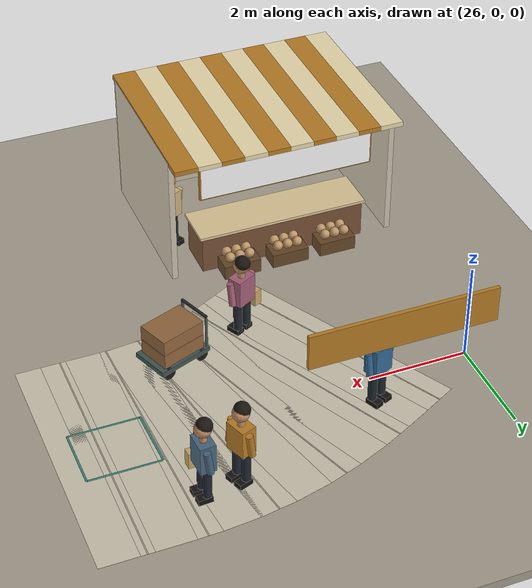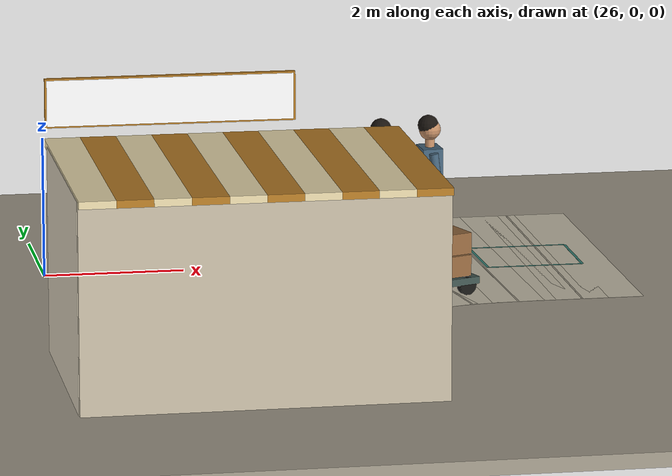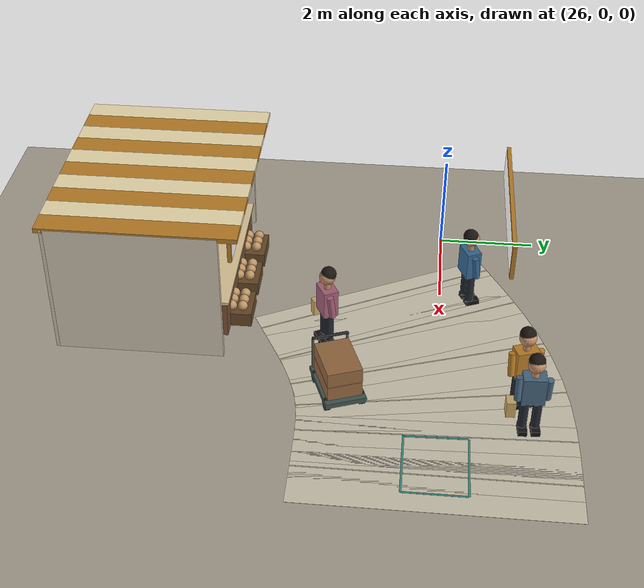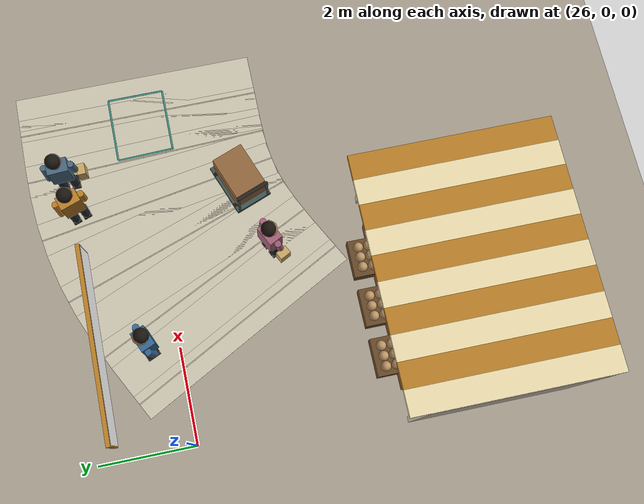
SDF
<sdf version="1.10">
 <world name="swan_market">
  <model name="ground">
   <static>true</static>
   <pose>15 0 -0.1 0 0 0</pose>
   <link name="body">
    <collision name="box_collision"><geometry><box><size>46 24 0.2</size></box></geometry></collision>
    <visual name="box_visual">
     <geometry><box><size>46 24 0.2</size></box></geometry>
     <material><ambient>0.64 0.61 0.55 1</ambient><diffuse>0.64 0.61 0.55 1</diffuse></material>
    </visual>
   </link>
  </model>
  <model name="market_paving_60">
   <static>true</static>
   <pose>28.25 -1.2978 0.002 0 0 0.48699</pose>
   <link name="body">
    <visual name="box_visual">
     <geometry><box><size>0.75 5.2 0.004</size></box></geometry>
     <material><ambient>0.79 0.76 0.68 1</ambient><diffuse>0.79 0.76 0.68 1</diffuse></material>
    </visual>
   </link>
  </model>
  <model name="paving_joint_60">
   <static>true</static>
   <pose>28.25 -1.2978 0.0045 0 0 0.48699</pose>
   <link name="body">
    <visual name="box_visual">
     <geometry><box><size>0.025 5.2 0.001</size></box></geometry>
     <material><ambient>0.67 0.64 0.57 1</ambient><diffuse>0.67 0.64 0.57 1</diffuse></material>
    </visual>
   </link>
  </model>
  <model name="market_paving_61">
   <static>true</static>
   <pose>28.75 -1.0326 0.002 0 0 0.48375</pose>
   <link name="body">
    <visual name="box_visual">
     <geometry><box><size>0.75 5.2 0.004</size></box></geometry>
     <material><ambient>0.79 0.76 0.68 1</ambient><diffuse>0.79 0.76 0.68 1</diffuse></material>
    </visual>
   </link>
  </model>
  <model name="market_paving_62">
   <static>true</static>
   <pose>29.25 -0.77782 0.002 0 0 0.45458</pose>
   <link name="body">
    <visual name="box_visual">
     <geometry><box><size>0.75 5.2 0.004</size></box></geometry>
     <material><ambient>0.79 0.76 0.68 1</ambient><diffuse>0.79 0.76 0.68 1</diffuse></material>
    </visual>
   </link>
  </model>
  <model name="paving_joint_62">
   <static>true</static>
   <pose>29.25 -0.77782 0.0045 0 0 0.45458</pose>
   <link name="body">
    <visual name="box_visual">
     <geometry><box><size>0.025 5.2 0.001</size></box></geometry>
     <material><ambient>0.67 0.64 0.57 1</ambient><diffuse>0.67 0.64 0.57 1</diffuse></material>
    </visual>
   </link>
  </model>
  <model name="market_paving_63">
   <static>true</static>
   <pose>29.75 -0.54833 0.002 0 0 0.40225</pose>
   <link name="body">
    <visual name="box_visual">
     <geometry><box><size>0.75 5.2 0.004</size></box></geometry>
     <material><ambient>0.79 0.76 0.68 1</ambient><diffuse>0.79 0.76 0.68 1</diffuse></material>
    </visual>
   </link>
  </model>
  <model name="market_paving_64">
   <static>true</static>
   <pose>30.25 -0.35543 0.002 0 0 0.33122</pose>
   <link name="body">
    <visual name="box_visual">
     <geometry><box><size>0.75 5.2 0.004</size></box></geometry>
     <material><ambient>0.79 0.76 0.68 1</ambient><diffuse>0.79 0.76 0.68 1</diffuse></material>
    </visual>
   </link>
  </model>
  <model name="paving_joint_64">
   <static>true</static>
   <pose>30.25 -0.35543 0.0045 0 0 0.33122</pose>
   <link name="body">
    <visual name="box_visual">
     <geometry><box><size>0.025 5.2 0.001</size></box></geometry>
     <material><ambient>0.67 0.64 0.57 1</ambient><diffuse>0.67 0.64 0.57 1</diffuse></material>
    </visual>
   </link>
  </model>
  <model name="market_paving_65">
   <static>true</static>
   <pose>30.75 -0.20586 0.002 0 0 0.2486</pose>
   <link name="body">
    <visual name="box_visual">
     <geometry><box><size>0.75 5.2 0.004</size></box></geometry>
     <material><ambient>0.79 0.76 0.68 1</ambient><diffuse>0.79 0.76 0.68 1</diffuse></material>
    </visual>
   </link>
  </model>
  <model name="market_paving_66">
   <static>true</static>
   <pose>31.25 -0.10125 0.002 0 0 0.16424</pose>
   <link name="body">
    <visual name="box_visual">
     <geometry><box><size>0.75 5.2 0.004</size></box></geometry>
     <material><ambient>0.79 0.76 0.68 1</ambient><diffuse>0.79 0.76 0.68 1</diffuse></material>
    </visual>
   </link>
  </model>
  <model name="paving_joint_66">
   <static>true</static>
   <pose>31.25 -0.10125 0.0045 0 0 0.16424</pose>
   <link name="body">
    <visual name="box_visual">
     <geometry><box><size>0.025 5.2 0.001</size></box></geometry>
     <material><ambient>0.67 0.64 0.57 1</ambient><diffuse>0.67 0.64 0.57 1</diffuse></material>
    </visual>
   </link>
  </model>
  <model name="market_paving_67">
   <static>true</static>
   <pose>31.75 -0.038143 0.002 0 0 0.089204</pose>
   <link name="body">
    <visual name="box_visual">
     <geometry><box><size>0.75 5.2 0.004</size></box></geometry>
     <material><ambient>0.79 0.76 0.68 1</ambient><diffuse>0.79 0.76 0.68 1</diffuse></material>
    </visual>
   </link>
  </model>
  <model name="market_paving_68">
   <static>true</static>
   <pose>32.25 -0.0084221 0.002 0 0 0.033398</pose>
   <link name="body">
    <visual name="box_visual">
     <geometry><box><size>0.75 5.2 0.004</size></box></geometry>
     <material><ambient>0.79 0.76 0.68 1</ambient><diffuse>0.79 0.76 0.68 1</diffuse></material>
    </visual>
   </link>
  </model>
  <model name="paving_joint_68">
   <static>true</static>
   <pose>32.25 -0.0084221 0.0045 0 0 0.033398</pose>
   <link name="body">
    <visual name="box_visual">
     <geometry><box><size>0.025 5.2 0.001</size></box></geometry>
     <material><ambient>0.67 0.64 0.57 1</ambient><diffuse>0.67 0.64 0.57 1</diffuse></material>
    </visual>
   </link>
  </model>
  <model name="market_paving_69">
   <static>true</static>
   <pose>32.75 -0.00031537 0.002 0 0 0.003781</pose>
   <link name="body">
    <visual name="box_visual">
     <geometry><box><size>0.75 5.2 0.004</size></box></geometry>
     <material><ambient>0.79 0.76 0.68 1</ambient><diffuse>0.79 0.76 0.68 1</diffuse></material>
    </visual>
   </link>
  </model>
  <model name="market_paving_70">
   <static>true</static>
   <pose>33.25 0 0.002 0 0 0</pose>
   <link name="body">
    <visual name="box_visual">
     <geometry><box><size>0.75 5.2 0.004</size></box></geometry>
     <material><ambient>0.79 0.76 0.68 1</ambient><diffuse>0.79 0.76 0.68 1</diffuse></material>
    </visual>
   </link>
  </model>
  <model name="paving_joint_70">
   <static>true</static>
   <pose>33.25 0 0.0045 0 0 0</pose>
   <link name="body">
    <visual name="box_visual">
     <geometry><box><size>0.025 5.2 0.001</size></box></geometry>
     <material><ambient>0.67 0.64 0.57 1</ambient><diffuse>0.67 0.64 0.57 1</diffuse></material>
    </visual>
   </link>
  </model>
  <model name="market_paving_71">
   <static>true</static>
   <pose>33.75 0 0.002 0 0 0</pose>
   <link name="body">
    <visual name="box_visual">
     <geometry><box><size>0.75 5.2 0.004</size></box></geometry>
     <material><ambient>0.79 0.76 0.68 1</ambient><diffuse>0.79 0.76 0.68 1</diffuse></material>
    </visual>
   </link>
  </model>
  <model name="signboard_3">
   <static>true</static>
   <pose>28 1.2611 2.24 0 0 0</pose>
   <link name="body">
    <collision name="box_collision"><geometry><box><size>3.65 0.08 0.72</size></box></geometry></collision>
    <visual name="box_visual">
     <geometry><box><size>3.65 0.08 0.72</size></box></geometry>
     <material><ambient>0.72 0.49 0.15 1</ambient><diffuse>0.72 0.49 0.15 1</diffuse></material>
    </visual>
   </link>
  </model>
  <model name="sign_shop_3">
   <static>true</static>
   <pose>28 1.2131 2.24 0 0 0</pose>
   <link name="body">
    <visual name="lettering">
     <geometry>
      <mesh><uri>model://swan_market_assets/meshes/shop_3.dae</uri><scale>3.6 1 0.675</scale></mesh>
     </geometry>
     <material>
      <ambient>1 1 1 1</ambient>
      <diffuse>1 1 1 1</diffuse>
      <emissive>0 0 0 1</emissive>
      <pbr>
       <metal>
        <albedo_map>model://swan_market_assets/materials/textures/shop_3.png</albedo_map>
        <metalness>0</metalness>
        <roughness>1</roughness>
       </metal>
      </pbr>
     </material>
    </visual>
   </link>
  </model>
  <model name="stall_07">
   <static>true</static>
   <pose>28 -5.8789 0 0 0 0</pose>
   <link name="body">
    <collision name="rear_collision">
     <pose>0 -1.65 1.4 0 0 0</pose>
     <geometry><box><size>4.8 0.15 2.8</size></box></geometry>
    </collision>
    <visual name="rear_visual">
     <pose>0 -1.65 1.4 0 0 0</pose>
     <geometry><box><size>4.8 0.15 2.8</size></box></geometry>
     <material><ambient>0.78 0.74 0.65 1</ambient><diffuse>0.78 0.74 0.65 1</diffuse></material>
    </visual>
    <collision name="side_-2.35_collision">
     <pose>-2.35 0 1.4 0 0 0</pose>
     <geometry><box><size>0.12 3.3 2.8</size></box></geometry>
    </collision>
    <visual name="side_-2.35_visual">
     <pose>-2.35 0 1.4 0 0 0</pose>
     <geometry><box><size>0.12 3.3 2.8</size></box></geometry>
     <material><ambient>0.81 0.77 0.69 1</ambient><diffuse>0.81 0.77 0.69 1</diffuse></material>
    </visual>
    <collision name="side_2.35_collision">
     <pose>2.35 0 1.4 0 0 0</pose>
     <geometry><box><size>0.12 3.3 2.8</size></box></geometry>
    </collision>
    <visual name="side_2.35_visual">
     <pose>2.35 0 1.4 0 0 0</pose>
     <geometry><box><size>0.12 3.3 2.8</size></box></geometry>
     <material><ambient>0.81 0.77 0.69 1</ambient><diffuse>0.81 0.77 0.69 1</diffuse></material>
    </visual>
    <collision name="counter_collision">
     <pose>0 1.22 0.4 0 0 0</pose>
     <geometry><box><size>3.5 0.85 0.8</size></box></geometry>
    </collision>
    <visual name="counter_visual">
     <pose>0 1.22 0.4 0 0 0</pose>
     <geometry><box><size>3.5 0.85 0.8</size></box></geometry>
     <material><ambient>0.47 0.32 0.21 1</ambient><diffuse>0.47 0.32 0.21 1</diffuse></material>
    </visual>
    <collision name="counter_top_collision">
     <pose>0 1.22 0.83 0 0 0</pose>
     <geometry><box><size>3.6 0.95 0.06</size></box></geometry>
    </collision>
    <visual name="counter_top_visual">
     <pose>0 1.22 0.83 0 0 0</pose>
     <geometry><box><size>3.6 0.95 0.06</size></box></geometry>
     <material><ambient>0.86 0.77 0.59 1</ambient><diffuse>0.86 0.77 0.59 1</diffuse></material>
    </visual>
    <collision name="awning_0_collision">
     <pose>-2.16 0.1 2.78 0 0 0</pose>
     <geometry><box><size>0.48 3.85 0.1</size></box></geometry>
    </collision>
    <visual name="awning_0_visual">
     <pose>-2.16 0.1 2.78 0 0 0</pose>
     <geometry><box><size>0.48 3.85 0.1</size></box></geometry>
     <material><ambient>0.92 0.86 0.68 1</ambient><diffuse>0.92 0.86 0.68 1</diffuse></material>
    </visual>
    <collision name="awning_1_collision">
     <pose>-1.68 0.1 2.78 0 0 0</pose>
     <geometry><box><size>0.48 3.85 0.1</size></box></geometry>
    </collision>
    <visual name="awning_1_visual">
     <pose>-1.68 0.1 2.78 0 0 0</pose>
     <geometry><box><size>0.48 3.85 0.1</size></box></geometry>
     <material><ambient>0.72 0.49 0.15 1</ambient><diffuse>0.72 0.49 0.15 1</diffuse></material>
    </visual>
    <collision name="awning_2_collision">
     <pose>-1.2 0.1 2.78 0 0 0</pose>
     <geometry><box><size>0.48 3.85 0.1</size></box></geometry>
    </collision>
    <visual name="awning_2_visual">
     <pose>-1.2 0.1 2.78 0 0 0</pose>
     <geometry><box><size>0.48 3.85 0.1</size></box></geometry>
     <material><ambient>0.92 0.86 0.68 1</ambient><diffuse>0.92 0.86 0.68 1</diffuse></material>
    </visual>
    <collision name="awning_3_collision">
     <pose>-0.72 0.1 2.78 0 0 0</pose>
     <geometry><box><size>0.48 3.85 0.1</size></box></geometry>
    </collision>
    <visual name="awning_3_visual">
     <pose>-0.72 0.1 2.78 0 0 0</pose>
     <geometry><box><size>0.48 3.85 0.1</size></box></geometry>
     <material><ambient>0.72 0.49 0.15 1</ambient><diffuse>0.72 0.49 0.15 1</diffuse></material>
    </visual>
    <collision name="awning_4_collision">
     <pose>-0.24 0.1 2.78 0 0 0</pose>
     <geometry><box><size>0.48 3.85 0.1</size></box></geometry>
    </collision>
    <visual name="awning_4_visual">
     <pose>-0.24 0.1 2.78 0 0 0</pose>
     <geometry><box><size>0.48 3.85 0.1</size></box></geometry>
     <material><ambient>0.92 0.86 0.68 1</ambient><diffuse>0.92 0.86 0.68 1</diffuse></material>
    </visual>
    <collision name="awning_5_collision">
     <pose>0.24 0.1 2.78 0 0 0</pose>
     <geometry><box><size>0.48 3.85 0.1</size></box></geometry>
    </collision>
    <visual name="awning_5_visual">
     <pose>0.24 0.1 2.78 0 0 0</pose>
     <geometry><box><size>0.48 3.85 0.1</size></box></geometry>
     <material><ambient>0.72 0.49 0.15 1</ambient><diffuse>0.72 0.49 0.15 1</diffuse></material>
    </visual>
    <collision name="awning_6_collision">
     <pose>0.72 0.1 2.78 0 0 0</pose>
     <geometry><box><size>0.48 3.85 0.1</size></box></geometry>
    </collision>
    <visual name="awning_6_visual">
     <pose>0.72 0.1 2.78 0 0 0</pose>
     <geometry><box><size>0.48 3.85 0.1</size></box></geometry>
     <material><ambient>0.92 0.86 0.68 1</ambient><diffuse>0.92 0.86 0.68 1</diffuse></material>
    </visual>
    <collision name="awning_7_collision">
     <pose>1.2 0.1 2.78 0 0 0</pose>
     <geometry><box><size>0.48 3.85 0.1</size></box></geometry>
    </collision>
    <visual name="awning_7_visual">
     <pose>1.2 0.1 2.78 0 0 0</pose>
     <geometry><box><size>0.48 3.85 0.1</size></box></geometry>
     <material><ambient>0.72 0.49 0.15 1</ambient><diffuse>0.72 0.49 0.15 1</diffuse></material>
    </visual>
    <collision name="awning_8_collision">
     <pose>1.68 0.1 2.78 0 0 0</pose>
     <geometry><box><size>0.48 3.85 0.1</size></box></geometry>
    </collision>
    <visual name="awning_8_visual">
     <pose>1.68 0.1 2.78 0 0 0</pose>
     <geometry><box><size>0.48 3.85 0.1</size></box></geometry>
     <material><ambient>0.92 0.86 0.68 1</ambient><diffuse>0.92 0.86 0.68 1</diffuse></material>
    </visual>
    <collision name="awning_9_collision">
     <pose>2.16 0.1 2.78 0 0 0</pose>
     <geometry><box><size>0.48 3.85 0.1</size></box></geometry>
    </collision>
    <visual name="awning_9_visual">
     <pose>2.16 0.1 2.78 0 0 0</pose>
     <geometry><box><size>0.48 3.85 0.1</size></box></geometry>
     <material><ambient>0.72 0.49 0.15 1</ambient><diffuse>0.72 0.49 0.15 1</diffuse></material>
    </visual>
    <collision name="crate_-1_collision">
     <pose>-1.04 1.77 0.15 0 0 0</pose>
     <geometry><box><size>0.78 0.6 0.3</size></box></geometry>
    </collision>
    <visual name="crate_-1_visual">
     <pose>-1.04 1.77 0.15 0 0 0</pose>
     <geometry><box><size>0.78 0.6 0.3</size></box></geometry>
     <material><ambient>0.4 0.28 0.15 1</ambient><diffuse>0.4 0.28 0.15 1</diffuse></material>
    </visual>
    <visual name="produce_-1_0_visual">
     <pose>-1.25 1.66 0.39 0 0 0</pose>
     <geometry><sphere><radius>0.105</radius></sphere></geometry>
     <material><ambient>0.74 0.58 0.39 1</ambient><diffuse>0.74 0.58 0.39 1</diffuse></material>
    </visual>
    <visual name="produce_-1_1_visual">
     <pose>-1.04 1.66 0.39 0 0 0</pose>
     <geometry><sphere><radius>0.105</radius></sphere></geometry>
     <material><ambient>0.74 0.58 0.39 1</ambient><diffuse>0.74 0.58 0.39 1</diffuse></material>
    </visual>
    <visual name="produce_-1_2_visual">
     <pose>-0.83 1.66 0.39 0 0 0</pose>
     <geometry><sphere><radius>0.105</radius></sphere></geometry>
     <material><ambient>0.74 0.58 0.39 1</ambient><diffuse>0.74 0.58 0.39 1</diffuse></material>
    </visual>
    <visual name="produce_-1_3_visual">
     <pose>-1.25 1.88 0.39 0 0 0</pose>
     <geometry><sphere><radius>0.105</radius></sphere></geometry>
     <material><ambient>0.74 0.58 0.39 1</ambient><diffuse>0.74 0.58 0.39 1</diffuse></material>
    </visual>
    <visual name="produce_-1_4_visual">
     <pose>-1.04 1.88 0.39 0 0 0</pose>
     <geometry><sphere><radius>0.105</radius></sphere></geometry>
     <material><ambient>0.74 0.58 0.39 1</ambient><diffuse>0.74 0.58 0.39 1</diffuse></material>
    </visual>
    <visual name="produce_-1_5_visual">
     <pose>-0.83 1.88 0.39 0 0 0</pose>
     <geometry><sphere><radius>0.105</radius></sphere></geometry>
     <material><ambient>0.74 0.58 0.39 1</ambient><diffuse>0.74 0.58 0.39 1</diffuse></material>
    </visual>
    <collision name="crate_0_collision">
     <pose>0 1.77 0.15 0 0 0</pose>
     <geometry><box><size>0.78 0.6 0.3</size></box></geometry>
    </collision>
    <visual name="crate_0_visual">
     <pose>0 1.77 0.15 0 0 0</pose>
     <geometry><box><size>0.78 0.6 0.3</size></box></geometry>
     <material><ambient>0.4 0.28 0.15 1</ambient><diffuse>0.4 0.28 0.15 1</diffuse></material>
    </visual>
    <visual name="produce_0_0_visual">
     <pose>-0.21 1.66 0.39 0 0 0</pose>
     <geometry><sphere><radius>0.105</radius></sphere></geometry>
     <material><ambient>0.74 0.58 0.39 1</ambient><diffuse>0.74 0.58 0.39 1</diffuse></material>
    </visual>
    <visual name="produce_0_1_visual">
     <pose>0 1.66 0.39 0 0 0</pose>
     <geometry><sphere><radius>0.105</radius></sphere></geometry>
     <material><ambient>0.74 0.58 0.39 1</ambient><diffuse>0.74 0.58 0.39 1</diffuse></material>
    </visual>
    <visual name="produce_0_2_visual">
     <pose>0.21 1.66 0.39 0 0 0</pose>
     <geometry><sphere><radius>0.105</radius></sphere></geometry>
     <material><ambient>0.74 0.58 0.39 1</ambient><diffuse>0.74 0.58 0.39 1</diffuse></material>
    </visual>
    <visual name="produce_0_3_visual">
     <pose>-0.21 1.88 0.39 0 0 0</pose>
     <geometry><sphere><radius>0.105</radius></sphere></geometry>
     <material><ambient>0.74 0.58 0.39 1</ambient><diffuse>0.74 0.58 0.39 1</diffuse></material>
    </visual>
    <visual name="produce_0_4_visual">
     <pose>0 1.88 0.39 0 0 0</pose>
     <geometry><sphere><radius>0.105</radius></sphere></geometry>
     <material><ambient>0.74 0.58 0.39 1</ambient><diffuse>0.74 0.58 0.39 1</diffuse></material>
    </visual>
    <visual name="produce_0_5_visual">
     <pose>0.21 1.88 0.39 0 0 0</pose>
     <geometry><sphere><radius>0.105</radius></sphere></geometry>
     <material><ambient>0.74 0.58 0.39 1</ambient><diffuse>0.74 0.58 0.39 1</diffuse></material>
    </visual>
    <collision name="crate_1_collision">
     <pose>1.04 1.77 0.15 0 0 0</pose>
     <geometry><box><size>0.78 0.6 0.3</size></box></geometry>
    </collision>
    <visual name="crate_1_visual">
     <pose>1.04 1.77 0.15 0 0 0</pose>
     <geometry><box><size>0.78 0.6 0.3</size></box></geometry>
     <material><ambient>0.4 0.28 0.15 1</ambient><diffuse>0.4 0.28 0.15 1</diffuse></material>
    </visual>
    <visual name="produce_1_0_visual">
     <pose>0.83 1.66 0.39 0 0 0</pose>
     <geometry><sphere><radius>0.105</radius></sphere></geometry>
     <material><ambient>0.74 0.58 0.39 1</ambient><diffuse>0.74 0.58 0.39 1</diffuse></material>
    </visual>
    <visual name="produce_1_1_visual">
     <pose>1.04 1.66 0.39 0 0 0</pose>
     <geometry><sphere><radius>0.105</radius></sphere></geometry>
     <material><ambient>0.74 0.58 0.39 1</ambient><diffuse>0.74 0.58 0.39 1</diffuse></material>
    </visual>
    <visual name="produce_1_2_visual">
     <pose>1.25 1.66 0.39 0 0 0</pose>
     <geometry><sphere><radius>0.105</radius></sphere></geometry>
     <material><ambient>0.74 0.58 0.39 1</ambient><diffuse>0.74 0.58 0.39 1</diffuse></material>
    </visual>
    <visual name="produce_1_3_visual">
     <pose>0.83 1.88 0.39 0 0 0</pose>
     <geometry><sphere><radius>0.105</radius></sphere></geometry>
     <material><ambient>0.74 0.58 0.39 1</ambient><diffuse>0.74 0.58 0.39 1</diffuse></material>
    </visual>
    <visual name="produce_1_4_visual">
     <pose>1.04 1.88 0.39 0 0 0</pose>
     <geometry><sphere><radius>0.105</radius></sphere></geometry>
     <material><ambient>0.74 0.58 0.39 1</ambient><diffuse>0.74 0.58 0.39 1</diffuse></material>
    </visual>
    <visual name="produce_1_5_visual">
     <pose>1.25 1.88 0.39 0 0 0</pose>
     <geometry><sphere><radius>0.105</radius></sphere></geometry>
     <material><ambient>0.74 0.58 0.39 1</ambient><diffuse>0.74 0.58 0.39 1</diffuse></material>
    </visual>
   </link>
  </model>
  <model name="signboard_7">
   <static>true</static>
   <pose>28 -4.1189 2.24 0 0 0</pose>
   <link name="body">
    <collision name="box_collision"><geometry><box><size>3.65 0.08 0.72</size></box></geometry></collision>
    <visual name="box_visual">
     <geometry><box><size>3.65 0.08 0.72</size></box></geometry>
     <material><ambient>0.72 0.49 0.15 1</ambient><diffuse>0.72 0.49 0.15 1</diffuse></material>
    </visual>
   </link>
  </model>
  <model name="sign_shop_7">
   <static>true</static>
   <pose>28 -4.0709 2.24 0 0 3.1416</pose>
   <link name="body">
    <visual name="lettering">
     <geometry>
      <mesh><uri>model://swan_market_assets/meshes/shop_7.dae</uri><scale>3.6 1 0.675</scale></mesh>
     </geometry>
     <material>
      <ambient>1 1 1 1</ambient>
      <diffuse>1 1 1 1</diffuse>
      <emissive>0 0 0 1</emissive>
      <pbr>
       <metal>
        <albedo_map>model://swan_market_assets/materials/textures/shop_7.png</albedo_map>
        <metalness>0</metalness>
        <roughness>1</roughness>
       </metal>
      </pbr>
     </material>
    </visual>
   </link>
  </model>
  <model name="shopper_flowers">
   <static>true</static>
   <pose>29.682 -2.2387 0 0 0 -1.0985</pose>
   <link name="body">
    <collision name="leg_-1_collision">
     <pose>0 -0.12 0.4 0 0 0</pose>
     <geometry><cylinder><radius>0.085</radius><length>0.68</length></cylinder></geometry>
    </collision>
    <visual name="leg_-1_visual">
     <pose>0 -0.12 0.4 0 0 0</pose>
     <geometry><cylinder><radius>0.085</radius><length>0.68</length></cylinder></geometry>
     <material><ambient>0.12 0.15 0.18 1</ambient><diffuse>0.12 0.15 0.18 1</diffuse></material>
    </visual>
    <collision name="shoe_-1_collision">
     <pose>0.06 -0.12 0.055 0 0 0</pose>
     <geometry><box><size>0.28 0.17 0.11</size></box></geometry>
    </collision>
    <visual name="shoe_-1_visual">
     <pose>0.06 -0.12 0.055 0 0 0</pose>
     <geometry><box><size>0.28 0.17 0.11</size></box></geometry>
     <material><ambient>0.08 0.07 0.06 1</ambient><diffuse>0.08 0.07 0.06 1</diffuse></material>
    </visual>
    <collision name="arm_-1_collision">
     <pose>0.02 -0.27 1.02 0 -0.12 0</pose>
     <geometry><cylinder><radius>0.068</radius><length>0.48</length></cylinder></geometry>
    </collision>
    <visual name="arm_-1_visual">
     <pose>0.02 -0.27 1.02 0 -0.12 0</pose>
     <geometry><cylinder><radius>0.068</radius><length>0.48</length></cylinder></geometry>
     <material><ambient>0.64 0.37 0.46 1</ambient><diffuse>0.64 0.37 0.46 1</diffuse></material>
    </visual>
    <collision name="leg_1_collision">
     <pose>0 0.12 0.4 0 0 0</pose>
     <geometry><cylinder><radius>0.085</radius><length>0.68</length></cylinder></geometry>
    </collision>
    <visual name="leg_1_visual">
     <pose>0 0.12 0.4 0 0 0</pose>
     <geometry><cylinder><radius>0.085</radius><length>0.68</length></cylinder></geometry>
     <material><ambient>0.12 0.15 0.18 1</ambient><diffuse>0.12 0.15 0.18 1</diffuse></material>
    </visual>
    <collision name="shoe_1_collision">
     <pose>0.06 0.12 0.055 0 0 0</pose>
     <geometry><box><size>0.28 0.17 0.11</size></box></geometry>
    </collision>
    <visual name="shoe_1_visual">
     <pose>0.06 0.12 0.055 0 0 0</pose>
     <geometry><box><size>0.28 0.17 0.11</size></box></geometry>
     <material><ambient>0.08 0.07 0.06 1</ambient><diffuse>0.08 0.07 0.06 1</diffuse></material>
    </visual>
    <collision name="arm_1_collision">
     <pose>0.02 0.27 1.02 0 0.12 0</pose>
     <geometry><cylinder><radius>0.068</radius><length>0.48</length></cylinder></geometry>
    </collision>
    <visual name="arm_1_visual">
     <pose>0.02 0.27 1.02 0 0.12 0</pose>
     <geometry><cylinder><radius>0.068</radius><length>0.48</length></cylinder></geometry>
     <material><ambient>0.64 0.37 0.46 1</ambient><diffuse>0.64 0.37 0.46 1</diffuse></material>
    </visual>
    <collision name="torso_collision">
     <pose>0 0 1.02 0 0 0</pose>
     <geometry><box><size>0.3 0.43 0.58</size></box></geometry>
    </collision>
    <visual name="torso_visual">
     <pose>0 0 1.02 0 0 0</pose>
     <geometry><box><size>0.3 0.43 0.58</size></box></geometry>
     <material><ambient>0.64 0.37 0.46 1</ambient><diffuse>0.64 0.37 0.46 1</diffuse></material>
    </visual>
    <visual name="neck_visual">
     <pose>0 0 1.37 0 0 0</pose>
     <geometry><cylinder><radius>0.07</radius><length>0.13</length></cylinder></geometry>
     <material><ambient>0.77 0.56 0.4 1</ambient><diffuse>0.77 0.56 0.4 1</diffuse></material>
    </visual>
    <collision name="head_collision">
     <pose>0 0 1.57 0 0 0</pose>
     <geometry><sphere><radius>0.16</radius></sphere></geometry>
    </collision>
    <visual name="head_visual">
     <pose>0 0 1.57 0 0 0</pose>
     <geometry><sphere><radius>0.16</radius></sphere></geometry>
     <material><ambient>0.77 0.56 0.4 1</ambient><diffuse>0.77 0.56 0.4 1</diffuse></material>
    </visual>
    <visual name="hair_visual">
     <pose>-0.025 0 1.63 0 0 0</pose>
     <geometry><sphere><radius>0.155</radius></sphere></geometry>
     <material><ambient>0.1 0.08 0.06 1</ambient><diffuse>0.1 0.08 0.06 1</diffuse></material>
    </visual>
    <collision name="shopping_bag_collision">
     <pose>0.04 -0.38 0.6 0 0 0</pose>
     <geometry><box><size>0.24 0.17 0.33</size></box></geometry>
    </collision>
    <visual name="shopping_bag_visual">
     <pose>0.04 -0.38 0.6 0 0 0</pose>
     <geometry><box><size>0.24 0.17 0.33</size></box></geometry>
     <material><ambient>0.78 0.65 0.39 1</ambient><diffuse>0.78 0.65 0.39 1</diffuse></material>
    </visual>
   </link>
  </model>
  <model name="shopper_exit">
   <static>true</static>
   <pose>31.901 1.6773 0 0 0 0.058381</pose>
   <link name="body">
    <collision name="leg_-1_collision">
     <pose>0 -0.12 0.4 0 0 0</pose>
     <geometry><cylinder><radius>0.085</radius><length>0.68</length></cylinder></geometry>
    </collision>
    <visual name="leg_-1_visual">
     <pose>0 -0.12 0.4 0 0 0</pose>
     <geometry><cylinder><radius>0.085</radius><length>0.68</length></cylinder></geometry>
     <material><ambient>0.12 0.15 0.18 1</ambient><diffuse>0.12 0.15 0.18 1</diffuse></material>
    </visual>
    <collision name="shoe_-1_collision">
     <pose>0.06 -0.12 0.055 0 0 0</pose>
     <geometry><box><size>0.28 0.17 0.11</size></box></geometry>
    </collision>
    <visual name="shoe_-1_visual">
     <pose>0.06 -0.12 0.055 0 0 0</pose>
     <geometry><box><size>0.28 0.17 0.11</size></box></geometry>
     <material><ambient>0.08 0.07 0.06 1</ambient><diffuse>0.08 0.07 0.06 1</diffuse></material>
    </visual>
    <collision name="arm_-1_collision">
     <pose>0.02 -0.27 1.02 0 -0.12 0</pose>
     <geometry><cylinder><radius>0.068</radius><length>0.48</length></cylinder></geometry>
    </collision>
    <visual name="arm_-1_visual">
     <pose>0.02 -0.27 1.02 0 -0.12 0</pose>
     <geometry><cylinder><radius>0.068</radius><length>0.48</length></cylinder></geometry>
     <material><ambient>0.28 0.4 0.49 1</ambient><diffuse>0.28 0.4 0.49 1</diffuse></material>
    </visual>
    <collision name="leg_1_collision">
     <pose>0 0.12 0.4 0 0 0</pose>
     <geometry><cylinder><radius>0.085</radius><length>0.68</length></cylinder></geometry>
    </collision>
    <visual name="leg_1_visual">
     <pose>0 0.12 0.4 0 0 0</pose>
     <geometry><cylinder><radius>0.085</radius><length>0.68</length></cylinder></geometry>
     <material><ambient>0.12 0.15 0.18 1</ambient><diffuse>0.12 0.15 0.18 1</diffuse></material>
    </visual>
    <collision name="shoe_1_collision">
     <pose>0.06 0.12 0.055 0 0 0</pose>
     <geometry><box><size>0.28 0.17 0.11</size></box></geometry>
    </collision>
    <visual name="shoe_1_visual">
     <pose>0.06 0.12 0.055 0 0 0</pose>
     <geometry><box><size>0.28 0.17 0.11</size></box></geometry>
     <material><ambient>0.08 0.07 0.06 1</ambient><diffuse>0.08 0.07 0.06 1</diffuse></material>
    </visual>
    <collision name="arm_1_collision">
     <pose>0.02 0.27 1.02 0 0.12 0</pose>
     <geometry><cylinder><radius>0.068</radius><length>0.48</length></cylinder></geometry>
    </collision>
    <visual name="arm_1_visual">
     <pose>0.02 0.27 1.02 0 0.12 0</pose>
     <geometry><cylinder><radius>0.068</radius><length>0.48</length></cylinder></geometry>
     <material><ambient>0.28 0.4 0.49 1</ambient><diffuse>0.28 0.4 0.49 1</diffuse></material>
    </visual>
    <collision name="torso_collision">
     <pose>0 0 1.02 0 0 0</pose>
     <geometry><box><size>0.3 0.43 0.58</size></box></geometry>
    </collision>
    <visual name="torso_visual">
     <pose>0 0 1.02 0 0 0</pose>
     <geometry><box><size>0.3 0.43 0.58</size></box></geometry>
     <material><ambient>0.28 0.4 0.49 1</ambient><diffuse>0.28 0.4 0.49 1</diffuse></material>
    </visual>
    <visual name="neck_visual">
     <pose>0 0 1.37 0 0 0</pose>
     <geometry><cylinder><radius>0.07</radius><length>0.13</length></cylinder></geometry>
     <material><ambient>0.77 0.56 0.4 1</ambient><diffuse>0.77 0.56 0.4 1</diffuse></material>
    </visual>
    <collision name="head_collision">
     <pose>0 0 1.57 0 0 0</pose>
     <geometry><sphere><radius>0.16</radius></sphere></geometry>
    </collision>
    <visual name="head_visual">
     <pose>0 0 1.57 0 0 0</pose>
     <geometry><sphere><radius>0.16</radius></sphere></geometry>
     <material><ambient>0.77 0.56 0.4 1</ambient><diffuse>0.77 0.56 0.4 1</diffuse></material>
    </visual>
    <visual name="hair_visual">
     <pose>-0.025 0 1.63 0 0 0</pose>
     <geometry><sphere><radius>0.155</radius></sphere></geometry>
     <material><ambient>0.1 0.08 0.06 1</ambient><diffuse>0.1 0.08 0.06 1</diffuse></material>
    </visual>
    <collision name="shopping_bag_collision">
     <pose>0.04 -0.38 0.6 0 0 0</pose>
     <geometry><box><size>0.24 0.17 0.33</size></box></geometry>
    </collision>
    <visual name="shopping_bag_visual">
     <pose>0.04 -0.38 0.6 0 0 0</pose>
     <geometry><box><size>0.24 0.17 0.33</size></box></geometry>
     <material><ambient>0.78 0.65 0.39 1</ambient><diffuse>0.78 0.65 0.39 1</diffuse></material>
    </visual>
   </link>
  </model>
  <model name="vendor_3">
   <static>true</static>
   <pose>30.048 -5.3797 0 0 0 2.049</pose>
   <link name="body">
    <collision name="leg_-1_collision">
     <pose>0 -0.12 0.4 0 0 0</pose>
     <geometry><cylinder><radius>0.085</radius><length>0.68</length></cylinder></geometry>
    </collision>
    <visual name="leg_-1_visual">
     <pose>0 -0.12 0.4 0 0 0</pose>
     <geometry><cylinder><radius>0.085</radius><length>0.68</length></cylinder></geometry>
     <material><ambient>0.12 0.15 0.18 1</ambient><diffuse>0.12 0.15 0.18 1</diffuse></material>
    </visual>
    <collision name="shoe_-1_collision">
     <pose>0.06 -0.12 0.055 0 0 0</pose>
     <geometry><box><size>0.28 0.17 0.11</size></box></geometry>
    </collision>
    <visual name="shoe_-1_visual">
     <pose>0.06 -0.12 0.055 0 0 0</pose>
     <geometry><box><size>0.28 0.17 0.11</size></box></geometry>
     <material><ambient>0.08 0.07 0.06 1</ambient><diffuse>0.08 0.07 0.06 1</diffuse></material>
    </visual>
    <collision name="arm_-1_collision">
     <pose>0.02 -0.27 1.02 0 -0.12 0</pose>
     <geometry><cylinder><radius>0.068</radius><length>0.48</length></cylinder></geometry>
    </collision>
    <visual name="arm_-1_visual">
     <pose>0.02 -0.27 1.02 0 -0.12 0</pose>
     <geometry><cylinder><radius>0.068</radius><length>0.48</length></cylinder></geometry>
     <material><ambient>0.79 0.69 0.48 1</ambient><diffuse>0.79 0.69 0.48 1</diffuse></material>
    </visual>
    <collision name="leg_1_collision">
     <pose>0 0.12 0.4 0 0 0</pose>
     <geometry><cylinder><radius>0.085</radius><length>0.68</length></cylinder></geometry>
    </collision>
    <visual name="leg_1_visual">
     <pose>0 0.12 0.4 0 0 0</pose>
     <geometry><cylinder><radius>0.085</radius><length>0.68</length></cylinder></geometry>
     <material><ambient>0.12 0.15 0.18 1</ambient><diffuse>0.12 0.15 0.18 1</diffuse></material>
    </visual>
    <collision name="shoe_1_collision">
     <pose>0.06 0.12 0.055 0 0 0</pose>
     <geometry><box><size>0.28 0.17 0.11</size></box></geometry>
    </collision>
    <visual name="shoe_1_visual">
     <pose>0.06 0.12 0.055 0 0 0</pose>
     <geometry><box><size>0.28 0.17 0.11</size></box></geometry>
     <material><ambient>0.08 0.07 0.06 1</ambient><diffuse>0.08 0.07 0.06 1</diffuse></material>
    </visual>
    <collision name="arm_1_collision">
     <pose>0.02 0.27 1.02 0 0.12 0</pose>
     <geometry><cylinder><radius>0.068</radius><length>0.48</length></cylinder></geometry>
    </collision>
    <visual name="arm_1_visual">
     <pose>0.02 0.27 1.02 0 0.12 0</pose>
     <geometry><cylinder><radius>0.068</radius><length>0.48</length></cylinder></geometry>
     <material><ambient>0.79 0.69 0.48 1</ambient><diffuse>0.79 0.69 0.48 1</diffuse></material>
    </visual>
    <collision name="torso_collision">
     <pose>0 0 1.02 0 0 0</pose>
     <geometry><box><size>0.3 0.43 0.58</size></box></geometry>
    </collision>
    <visual name="torso_visual">
     <pose>0 0 1.02 0 0 0</pose>
     <geometry><box><size>0.3 0.43 0.58</size></box></geometry>
     <material><ambient>0.79 0.69 0.48 1</ambient><diffuse>0.79 0.69 0.48 1</diffuse></material>
    </visual>
    <visual name="neck_visual">
     <pose>0 0 1.37 0 0 0</pose>
     <geometry><cylinder><radius>0.07</radius><length>0.13</length></cylinder></geometry>
     <material><ambient>0.77 0.56 0.4 1</ambient><diffuse>0.77 0.56 0.4 1</diffuse></material>
    </visual>
    <collision name="head_collision">
     <pose>0 0 1.57 0 0 0</pose>
     <geometry><sphere><radius>0.16</radius></sphere></geometry>
    </collision>
    <visual name="head_visual">
     <pose>0 0 1.57 0 0 0</pose>
     <geometry><sphere><radius>0.16</radius></sphere></geometry>
     <material><ambient>0.77 0.56 0.4 1</ambient><diffuse>0.77 0.56 0.4 1</diffuse></material>
    </visual>
    <visual name="hair_visual">
     <pose>-0.025 0 1.63 0 0 0</pose>
     <geometry><sphere><radius>0.155</radius></sphere></geometry>
     <material><ambient>0.1 0.08 0.06 1</ambient><diffuse>0.1 0.08 0.06 1</diffuse></material>
    </visual>
   </link>
  </model>
  <model name="handcart_waiting">
   <static>true</static>
   <pose>31.216 -1.8932 0 0 0 0.36006</pose>
   <link name="body">
    <collision name="bed_collision">
     <pose>0 0 0.2 0 0 0</pose>
     <geometry><box><size>1.15 0.8 0.1</size></box></geometry>
    </collision>
    <visual name="bed_visual">
     <pose>0 0 0.2 0 0 0</pose>
     <geometry><box><size>1.15 0.8 0.1</size></box></geometry>
     <material><ambient>0.25 0.33 0.31 1</ambient><diffuse>0.25 0.33 0.31 1</diffuse></material>
    </visual>
    <collision name="wheel_-0.4_-0.34_collision">
     <pose>-0.4 -0.34 0.13 1.5708 0 0</pose>
     <geometry><cylinder><radius>0.13</radius><length>0.1</length></cylinder></geometry>
    </collision>
    <visual name="wheel_-0.4_-0.34_visual">
     <pose>-0.4 -0.34 0.13 1.5708 0 0</pose>
     <geometry><cylinder><radius>0.13</radius><length>0.1</length></cylinder></geometry>
     <material><ambient>0.09 0.09 0.08 1</ambient><diffuse>0.09 0.09 0.08 1</diffuse></material>
    </visual>
    <collision name="wheel_-0.4_0.34_collision">
     <pose>-0.4 0.34 0.13 1.5708 0 0</pose>
     <geometry><cylinder><radius>0.13</radius><length>0.1</length></cylinder></geometry>
    </collision>
    <visual name="wheel_-0.4_0.34_visual">
     <pose>-0.4 0.34 0.13 1.5708 0 0</pose>
     <geometry><cylinder><radius>0.13</radius><length>0.1</length></cylinder></geometry>
     <material><ambient>0.09 0.09 0.08 1</ambient><diffuse>0.09 0.09 0.08 1</diffuse></material>
    </visual>
    <collision name="wheel_0.4_-0.34_collision">
     <pose>0.4 -0.34 0.13 1.5708 0 0</pose>
     <geometry><cylinder><radius>0.13</radius><length>0.1</length></cylinder></geometry>
    </collision>
    <visual name="wheel_0.4_-0.34_visual">
     <pose>0.4 -0.34 0.13 1.5708 0 0</pose>
     <geometry><cylinder><radius>0.13</radius><length>0.1</length></cylinder></geometry>
     <material><ambient>0.09 0.09 0.08 1</ambient><diffuse>0.09 0.09 0.08 1</diffuse></material>
    </visual>
    <collision name="wheel_0.4_0.34_collision">
     <pose>0.4 0.34 0.13 1.5708 0 0</pose>
     <geometry><cylinder><radius>0.13</radius><length>0.1</length></cylinder></geometry>
    </collision>
    <visual name="wheel_0.4_0.34_visual">
     <pose>0.4 0.34 0.13 1.5708 0 0</pose>
     <geometry><cylinder><radius>0.13</radius><length>0.1</length></cylinder></geometry>
     <material><ambient>0.09 0.09 0.08 1</ambient><diffuse>0.09 0.09 0.08 1</diffuse></material>
    </visual>
    <collision name="cargo_0.41_collision">
     <pose>0 0 0.41 0 0 0</pose>
     <geometry><box><size>0.95 0.68 0.3</size></box></geometry>
    </collision>
    <visual name="cargo_0.41_visual">
     <pose>0 0 0.41 0 0 0</pose>
     <geometry><box><size>0.95 0.68 0.3</size></box></geometry>
     <material><ambient>0.57 0.4 0.24 1</ambient><diffuse>0.57 0.4 0.24 1</diffuse></material>
    </visual>
    <collision name="cargo_0.73_collision">
     <pose>0 0 0.73 0 0 0</pose>
     <geometry><box><size>0.95 0.68 0.3</size></box></geometry>
    </collision>
    <visual name="cargo_0.73_visual">
     <pose>0 0 0.73 0 0 0</pose>
     <geometry><box><size>0.95 0.68 0.3</size></box></geometry>
     <material><ambient>0.57 0.4 0.24 1</ambient><diffuse>0.57 0.4 0.24 1</diffuse></material>
    </visual>
    <collision name="handle_-0.34_collision">
     <pose>-0.55 -0.34 0.58 0 0 0</pose>
     <geometry><cylinder><radius>0.025</radius><length>0.75</length></cylinder></geometry>
    </collision>
    <visual name="handle_-0.34_visual">
     <pose>-0.55 -0.34 0.58 0 0 0</pose>
     <geometry><cylinder><radius>0.025</radius><length>0.75</length></cylinder></geometry>
     <material><ambient>0.3 0.34 0.32 1</ambient><diffuse>0.3 0.34 0.32 1</diffuse></material>
    </visual>
    <collision name="handle_0.34_collision">
     <pose>-0.55 0.34 0.58 0 0 0</pose>
     <geometry><cylinder><radius>0.025</radius><length>0.75</length></cylinder></geometry>
    </collision>
    <visual name="handle_0.34_visual">
     <pose>-0.55 0.34 0.58 0 0 0</pose>
     <geometry><cylinder><radius>0.025</radius><length>0.75</length></cylinder></geometry>
     <material><ambient>0.3 0.34 0.32 1</ambient><diffuse>0.3 0.34 0.32 1</diffuse></material>
    </visual>
    <collision name="grip_collision">
     <pose>-0.55 0 0.95 1.5708 0 0</pose>
     <geometry><cylinder><radius>0.03</radius><length>0.7</length></cylinder></geometry>
    </collision>
    <visual name="grip_visual">
     <pose>-0.55 0 0.95 1.5708 0 0</pose>
     <geometry><cylinder><radius>0.03</radius><length>0.7</length></cylinder></geometry>
     <material><ambient>0.15 0.16 0.15 1</ambient><diffuse>0.15 0.16 0.15 1</diffuse></material>
    </visual>
   </link>
  </model>
  <model name="crowd_10">
   <static>true</static>
   <pose>28.119 0.55542 0 0 0 1.9776</pose>
   <link name="body">
    <collision name="leg_-1_collision">
     <pose>0 -0.12 0.4 0 0 0</pose>
     <geometry><cylinder><radius>0.085</radius><length>0.68</length></cylinder></geometry>
    </collision>
    <visual name="leg_-1_visual">
     <pose>0 -0.12 0.4 0 0 0</pose>
     <geometry><cylinder><radius>0.085</radius><length>0.68</length></cylinder></geometry>
     <material><ambient>0.12 0.15 0.18 1</ambient><diffuse>0.12 0.15 0.18 1</diffuse></material>
    </visual>
    <collision name="shoe_-1_collision">
     <pose>0.06 -0.12 0.055 0 0 0</pose>
     <geometry><box><size>0.28 0.17 0.11</size></box></geometry>
    </collision>
    <visual name="shoe_-1_visual">
     <pose>0.06 -0.12 0.055 0 0 0</pose>
     <geometry><box><size>0.28 0.17 0.11</size></box></geometry>
     <material><ambient>0.08 0.07 0.06 1</ambient><diffuse>0.08 0.07 0.06 1</diffuse></material>
    </visual>
    <collision name="arm_-1_collision">
     <pose>0.02 -0.27 1.02 0 -0.12 0</pose>
     <geometry><cylinder><radius>0.068</radius><length>0.48</length></cylinder></geometry>
    </collision>
    <visual name="arm_-1_visual">
     <pose>0.02 -0.27 1.02 0 -0.12 0</pose>
     <geometry><cylinder><radius>0.068</radius><length>0.48</length></cylinder></geometry>
     <material><ambient>0.2 0.4 0.57 1</ambient><diffuse>0.2 0.4 0.57 1</diffuse></material>
    </visual>
    <collision name="leg_1_collision">
     <pose>0 0.12 0.4 0 0 0</pose>
     <geometry><cylinder><radius>0.085</radius><length>0.68</length></cylinder></geometry>
    </collision>
    <visual name="leg_1_visual">
     <pose>0 0.12 0.4 0 0 0</pose>
     <geometry><cylinder><radius>0.085</radius><length>0.68</length></cylinder></geometry>
     <material><ambient>0.12 0.15 0.18 1</ambient><diffuse>0.12 0.15 0.18 1</diffuse></material>
    </visual>
    <collision name="shoe_1_collision">
     <pose>0.06 0.12 0.055 0 0 0</pose>
     <geometry><box><size>0.28 0.17 0.11</size></box></geometry>
    </collision>
    <visual name="shoe_1_visual">
     <pose>0.06 0.12 0.055 0 0 0</pose>
     <geometry><box><size>0.28 0.17 0.11</size></box></geometry>
     <material><ambient>0.08 0.07 0.06 1</ambient><diffuse>0.08 0.07 0.06 1</diffuse></material>
    </visual>
    <collision name="arm_1_collision">
     <pose>0.02 0.27 1.02 0 0.12 0</pose>
     <geometry><cylinder><radius>0.068</radius><length>0.48</length></cylinder></geometry>
    </collision>
    <visual name="arm_1_visual">
     <pose>0.02 0.27 1.02 0 0.12 0</pose>
     <geometry><cylinder><radius>0.068</radius><length>0.48</length></cylinder></geometry>
     <material><ambient>0.2 0.4 0.57 1</ambient><diffuse>0.2 0.4 0.57 1</diffuse></material>
    </visual>
    <collision name="torso_collision">
     <pose>0 0 1.02 0 0 0</pose>
     <geometry><box><size>0.3 0.43 0.58</size></box></geometry>
    </collision>
    <visual name="torso_visual">
     <pose>0 0 1.02 0 0 0</pose>
     <geometry><box><size>0.3 0.43 0.58</size></box></geometry>
     <material><ambient>0.2 0.4 0.57 1</ambient><diffuse>0.2 0.4 0.57 1</diffuse></material>
    </visual>
    <visual name="neck_visual">
     <pose>0 0 1.37 0 0 0</pose>
     <geometry><cylinder><radius>0.07</radius><length>0.13</length></cylinder></geometry>
     <material><ambient>0.77 0.56 0.4 1</ambient><diffuse>0.77 0.56 0.4 1</diffuse></material>
    </visual>
    <collision name="head_collision">
     <pose>0 0 1.57 0 0 0</pose>
     <geometry><sphere><radius>0.16</radius></sphere></geometry>
    </collision>
    <visual name="head_visual">
     <pose>0 0 1.57 0 0 0</pose>
     <geometry><sphere><radius>0.16</radius></sphere></geometry>
     <material><ambient>0.77 0.56 0.4 1</ambient><diffuse>0.77 0.56 0.4 1</diffuse></material>
    </visual>
    <visual name="hair_visual">
     <pose>-0.025 0 1.63 0 0 0</pose>
     <geometry><sphere><radius>0.155</radius></sphere></geometry>
     <material><ambient>0.1 0.08 0.06 1</ambient><diffuse>0.1 0.08 0.06 1</diffuse></material>
    </visual>
   </link>
  </model>
  <model name="crowd_11">
   <static>true</static>
   <pose>31.169 1.5555 0 0 0 0.34026</pose>
   <link name="body">
    <collision name="leg_-1_collision">
     <pose>0 -0.12 0.4 0 0 0</pose>
     <geometry><cylinder><radius>0.085</radius><length>0.68</length></cylinder></geometry>
    </collision>
    <visual name="leg_-1_visual">
     <pose>0 -0.12 0.4 0 0 0</pose>
     <geometry><cylinder><radius>0.085</radius><length>0.68</length></cylinder></geometry>
     <material><ambient>0.12 0.15 0.18 1</ambient><diffuse>0.12 0.15 0.18 1</diffuse></material>
    </visual>
    <collision name="shoe_-1_collision">
     <pose>0.06 -0.12 0.055 0 0 0</pose>
     <geometry><box><size>0.28 0.17 0.11</size></box></geometry>
    </collision>
    <visual name="shoe_-1_visual">
     <pose>0.06 -0.12 0.055 0 0 0</pose>
     <geometry><box><size>0.28 0.17 0.11</size></box></geometry>
     <material><ambient>0.08 0.07 0.06 1</ambient><diffuse>0.08 0.07 0.06 1</diffuse></material>
    </visual>
    <collision name="arm_-1_collision">
     <pose>0.02 -0.27 1.02 0 -0.12 0</pose>
     <geometry><cylinder><radius>0.068</radius><length>0.48</length></cylinder></geometry>
    </collision>
    <visual name="arm_-1_visual">
     <pose>0.02 -0.27 1.02 0 -0.12 0</pose>
     <geometry><cylinder><radius>0.068</radius><length>0.48</length></cylinder></geometry>
     <material><ambient>0.72 0.49 0.15 1</ambient><diffuse>0.72 0.49 0.15 1</diffuse></material>
    </visual>
    <collision name="leg_1_collision">
     <pose>0 0.12 0.4 0 0 0</pose>
     <geometry><cylinder><radius>0.085</radius><length>0.68</length></cylinder></geometry>
    </collision>
    <visual name="leg_1_visual">
     <pose>0 0.12 0.4 0 0 0</pose>
     <geometry><cylinder><radius>0.085</radius><length>0.68</length></cylinder></geometry>
     <material><ambient>0.12 0.15 0.18 1</ambient><diffuse>0.12 0.15 0.18 1</diffuse></material>
    </visual>
    <collision name="shoe_1_collision">
     <pose>0.06 0.12 0.055 0 0 0</pose>
     <geometry><box><size>0.28 0.17 0.11</size></box></geometry>
    </collision>
    <visual name="shoe_1_visual">
     <pose>0.06 0.12 0.055 0 0 0</pose>
     <geometry><box><size>0.28 0.17 0.11</size></box></geometry>
     <material><ambient>0.08 0.07 0.06 1</ambient><diffuse>0.08 0.07 0.06 1</diffuse></material>
    </visual>
    <collision name="arm_1_collision">
     <pose>0.02 0.27 1.02 0 0.12 0</pose>
     <geometry><cylinder><radius>0.068</radius><length>0.48</length></cylinder></geometry>
    </collision>
    <visual name="arm_1_visual">
     <pose>0.02 0.27 1.02 0 0.12 0</pose>
     <geometry><cylinder><radius>0.068</radius><length>0.48</length></cylinder></geometry>
     <material><ambient>0.72 0.49 0.15 1</ambient><diffuse>0.72 0.49 0.15 1</diffuse></material>
    </visual>
    <collision name="torso_collision">
     <pose>0 0 1.02 0 0 0</pose>
     <geometry><box><size>0.3 0.43 0.58</size></box></geometry>
    </collision>
    <visual name="torso_visual">
     <pose>0 0 1.02 0 0 0</pose>
     <geometry><box><size>0.3 0.43 0.58</size></box></geometry>
     <material><ambient>0.72 0.49 0.15 1</ambient><diffuse>0.72 0.49 0.15 1</diffuse></material>
    </visual>
    <visual name="neck_visual">
     <pose>0 0 1.37 0 0 0</pose>
     <geometry><cylinder><radius>0.07</radius><length>0.13</length></cylinder></geometry>
     <material><ambient>0.77 0.56 0.4 1</ambient><diffuse>0.77 0.56 0.4 1</diffuse></material>
    </visual>
    <collision name="head_collision">
     <pose>0 0 1.57 0 0 0</pose>
     <geometry><sphere><radius>0.16</radius></sphere></geometry>
    </collision>
    <visual name="head_visual">
     <pose>0 0 1.57 0 0 0</pose>
     <geometry><sphere><radius>0.16</radius></sphere></geometry>
     <material><ambient>0.77 0.56 0.4 1</ambient><diffuse>0.77 0.56 0.4 1</diffuse></material>
    </visual>
    <visual name="hair_visual">
     <pose>-0.025 0 1.63 0 0 0</pose>
     <geometry><sphere><radius>0.155</radius></sphere></geometry>
     <material><ambient>0.1 0.08 0.06 1</ambient><diffuse>0.1 0.08 0.06 1</diffuse></material>
    </visual>
   </link>
  </model>
  <model name="stop_2_-0.7_0">
   <static>true</static>
   <pose>32.3 -0.0068584 0.009 0 0 0.029174</pose>
   <link name="body">
    <visual name="box_visual">
     <geometry><box><size>0.04 1.2 0.002</size></box></geometry>
     <material><ambient>0.22 0.52 0.47 1</ambient><diffuse>0.22 0.52 0.47 1</diffuse></material>
    </visual>
   </link>
  </model>
  <model name="stop_2_0.7_0">
   <static>true</static>
   <pose>33.7 0 0.009 0 0 0</pose>
   <link name="body">
    <visual name="box_visual">
     <geometry><box><size>0.04 1.2 0.002</size></box></geometry>
     <material><ambient>0.22 0.52 0.47 1</ambient><diffuse>0.22 0.52 0.47 1</diffuse></material>
    </visual>
   </link>
  </model>
  <model name="stop_2_0_-0.6">
   <static>true</static>
   <pose>33 -0.6 0.009 0 0 0</pose>
   <link name="body">
    <visual name="box_visual">
     <geometry><box><size>1.4 0.04 0.002</size></box></geometry>
     <material><ambient>0.22 0.52 0.47 1</ambient><diffuse>0.22 0.52 0.47 1</diffuse></material>
    </visual>
   </link>
  </model>
  <model name="stop_2_0_0.6">
   <static>true</static>
   <pose>33 0.6 0.009 0 0 0</pose>
   <link name="body">
    <visual name="box_visual">
     <geometry><box><size>1.4 0.04 0.002</size></box></geometry>
     <material><ambient>0.22 0.52 0.47 1</ambient><diffuse>0.22 0.52 0.47 1</diffuse></material>
    </visual>
   </link>
  </model>
 </world>
</sdf>
